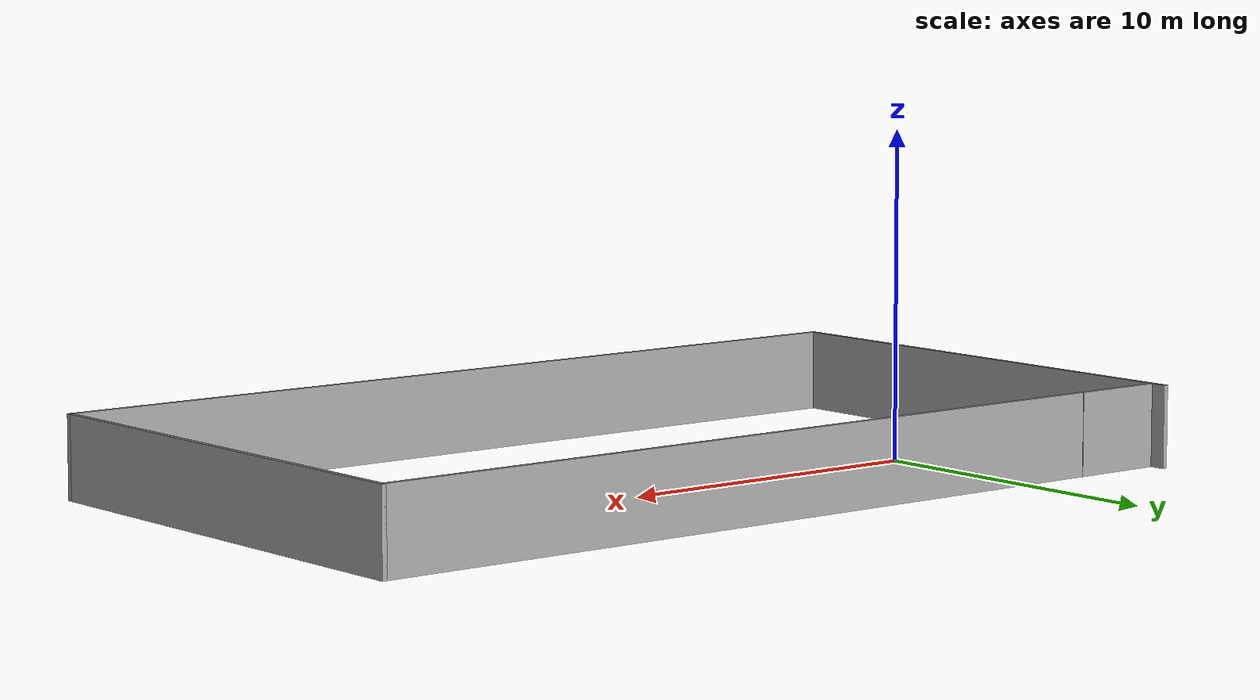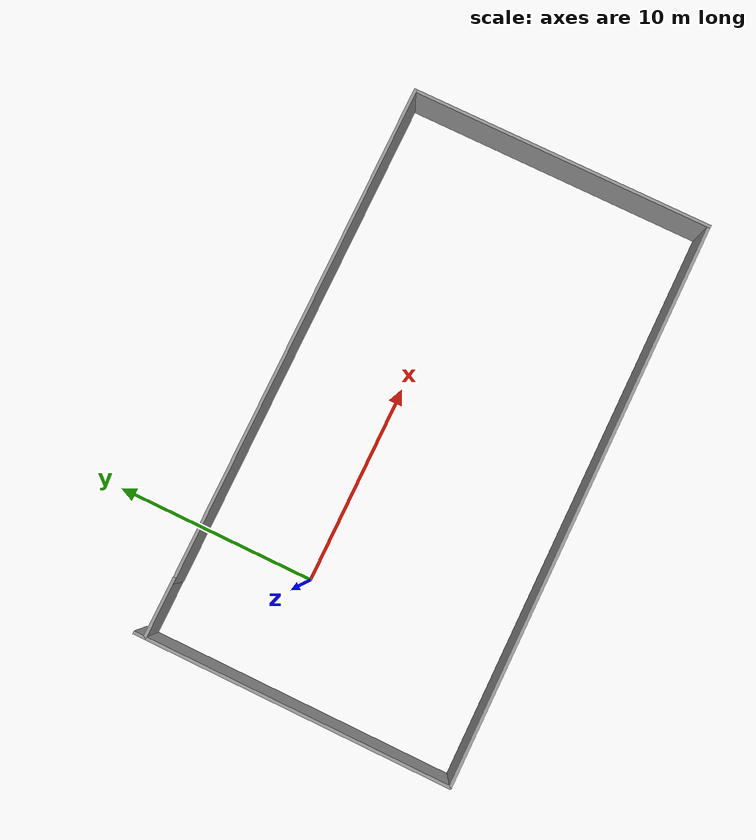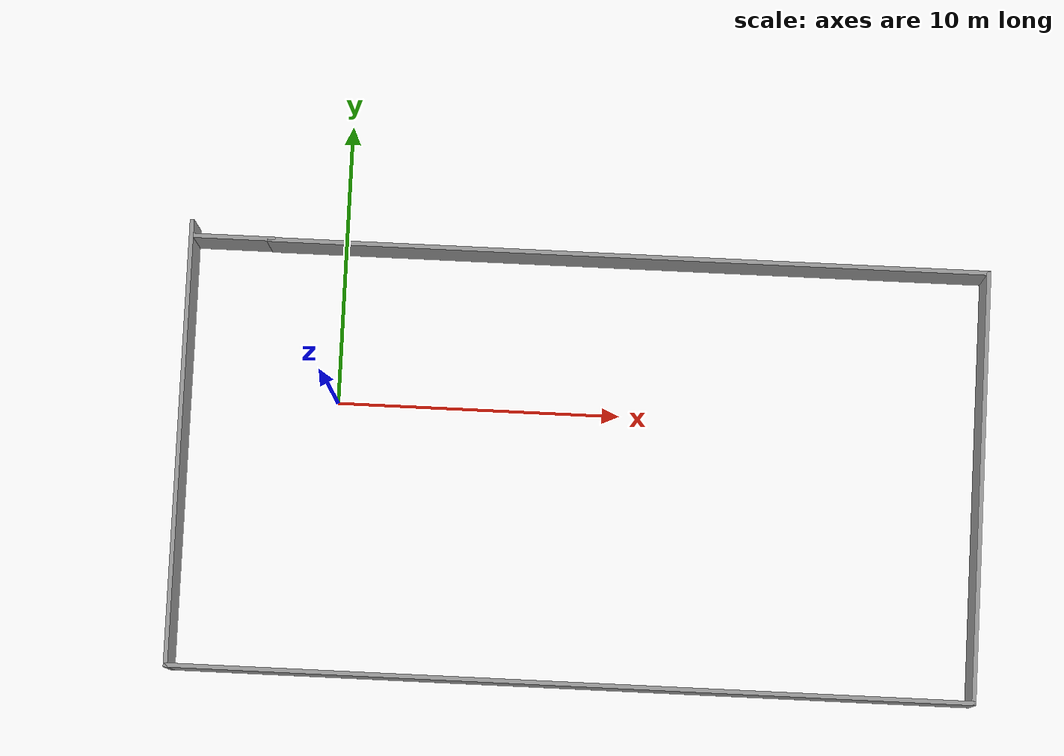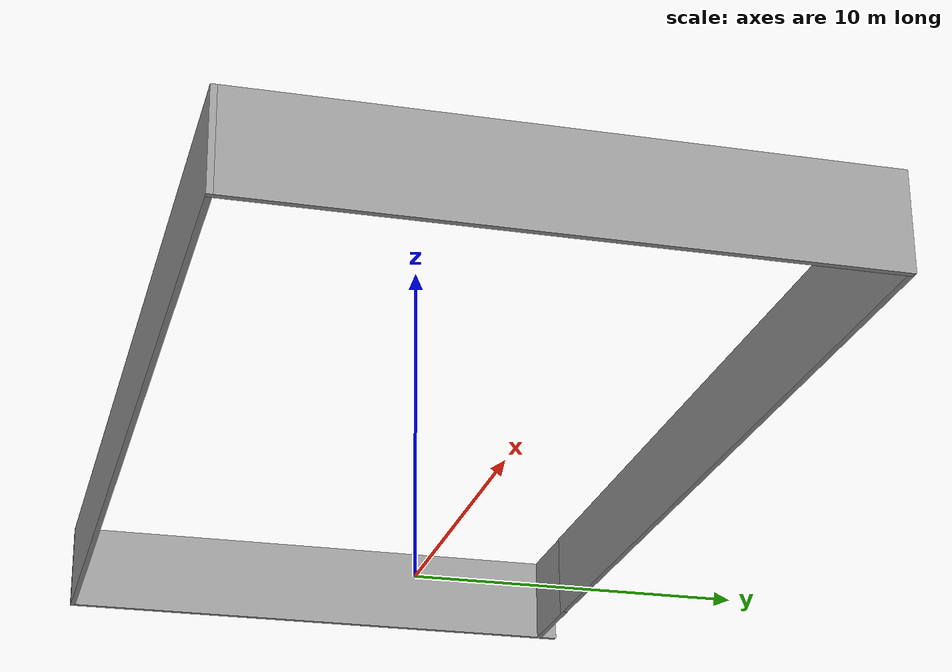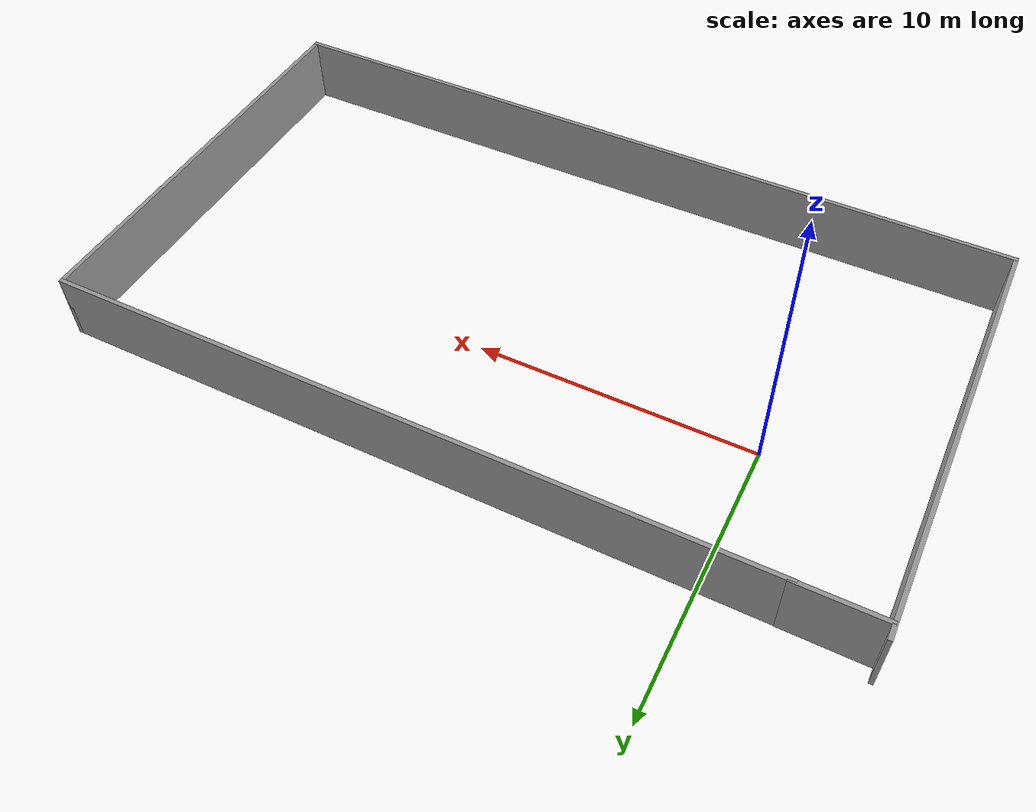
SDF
<?xml version='1.0'?>
<sdf version='1.7'>
  <model name='my_newworld.world'>
    <pose>8.70807 -1.87157 0 0 -0 0</pose>
    <link name='Wall_10'>
      <collision name='Wall_10_Collision'>
        <geometry>
          <box>
            <size>15.25 0.15 2.5</size>
          </box>
        </geometry>
        <pose>0 0 1.25 0 -0 0</pose>
      </collision>
      <visual name='Wall_10_Visual'>
        <pose>0 0 1.25 0 -0 0</pose>
        <geometry>
          <box>
            <size>15.25 0.15 2.5</size>
          </box>
        </geometry>
        <material>
          <script>
            <uri>file://media/materials/scripts/gazebo.material</uri>
            <name>Gazebo/Grey</name>
          </script>
          <ambient>1 1 1 1</ambient>
        </material>
        <meta>
          <layer>0</layer>
        </meta>
      </visual>
      <pose>14.05 -0.25 0 0 -0 -1.5708</pose>
    </link>
    <link name='Wall_11'>
      <collision name='Wall_11_Collision'>
        <geometry>
          <box>
            <size>28.25 0.15 2.5</size>
          </box>
        </geometry>
        <pose>0 0 1.25 0 -0 0</pose>
      </collision>
      <visual name='Wall_11_Visual'>
        <pose>0 0 1.25 0 -0 0</pose>
        <geometry>
          <box>
            <size>28.25 0.15 2.5</size>
          </box>
        </geometry>
        <material>
          <script>
            <uri>file://media/materials/scripts/gazebo.material</uri>
            <name>Gazebo/Grey</name>
          </script>
          <ambient>1 1 1 1</ambient>
        </material>
        <meta>
          <layer>0</layer>
        </meta>
      </visual>
      <pose>0 -7.8 0 0 -0 3.14159</pose>
    </link>
    <link name='Wall_12'>
      <collision name='Wall_12_Collision'>
        <geometry>
          <box>
            <size>15.75 0.15 2.5</size>
          </box>
        </geometry>
        <pose>0 0 1.25 0 -0 0</pose>
      </collision>
      <visual name='Wall_12_Visual'>
        <pose>0 0 1.25 0 -0 0</pose>
        <geometry>
          <box>
            <size>15.75 0.15 2.5</size>
          </box>
        </geometry>
        <material>
          <script>
            <uri>file://media/materials/scripts/gazebo.material</uri>
            <name>Gazebo/Grey</name>
          </script>
          <ambient>1 1 1 1</ambient>
        </material>
        <meta>
          <layer>0</layer>
        </meta>
      </visual>
      <pose>-14.05 0 0 0 -0 1.5708</pose>
    </link>
    <link name='Wall_15'>
      <collision name='Wall_15_Collision'>
        <geometry>
          <box>
            <size>3 0.15 2.5</size>
          </box>
        </geometry>
        <pose>0 0 1.25 0 -0 0</pose>
      </collision>
      <visual name='Wall_15_Visual'>
        <pose>0 0 1.25 0 -0 0</pose>
        <geometry>
          <box>
            <size>3 0.15 2.5</size>
          </box>
        </geometry>
        <material>
          <script>
            <uri>file://media/materials/scripts/gazebo.material</uri>
            <name>Gazebo/Grey</name>
          </script>
          <ambient>1 1 1 1</ambient>
        </material>
        <meta>
          <layer>0</layer>
        </meta>
      </visual>
      <pose>-12.5894 7.31473 0 0 -0 3.14159</pose>
    </link>
    <link name='Wall_9'>
      <collision name='Wall_9_Collision'>
        <geometry>
          <box>
            <size>25.5 0.15 2.5</size>
          </box>
        </geometry>
        <pose>0 0 1.25 0 -0 0</pose>
      </collision>
      <visual name='Wall_9_Visual'>
        <pose>0 0 1.25 0 -0 0</pose>
        <geometry>
          <box>
            <size>25.5 0.15 2.5</size>
          </box>
        </geometry>
        <material>
          <script>
            <uri>file://media/materials/scripts/gazebo.material</uri>
            <name>Gazebo/Grey</name>
          </script>
          <ambient>1 1 1 1</ambient>
        </material>
        <meta>
          <layer>0</layer>
        </meta>
      </visual>
      <pose>1.375 7.3 0 0 -0 0</pose>
    </link>
    <static>1</static>
  </model>
</sdf>
